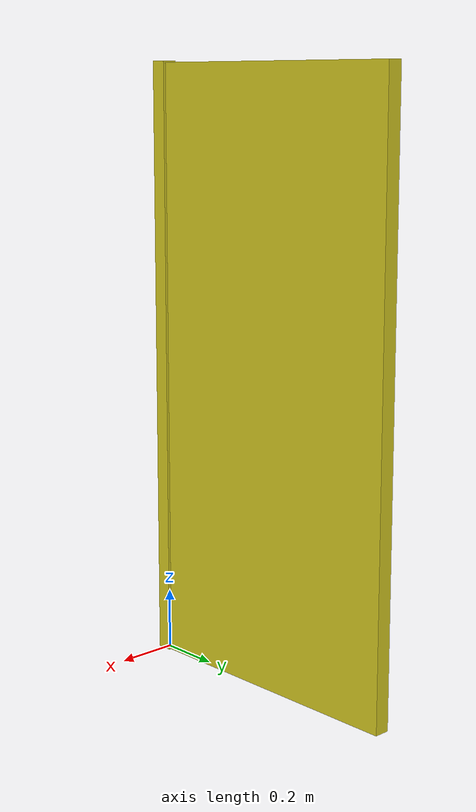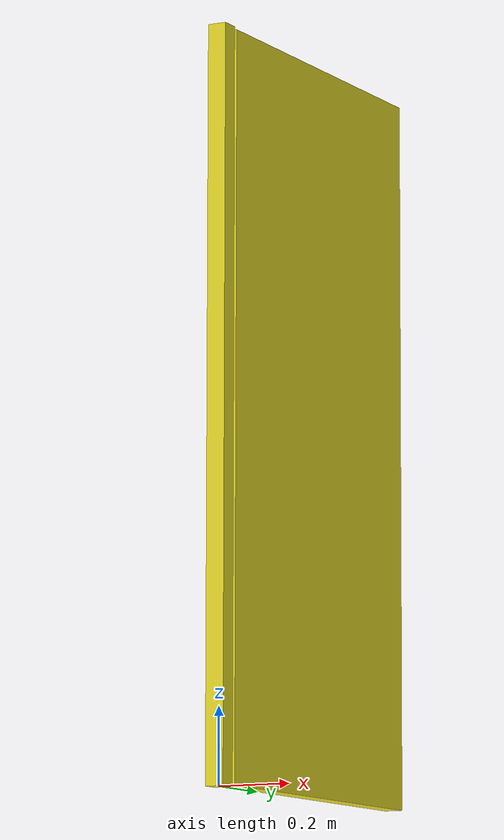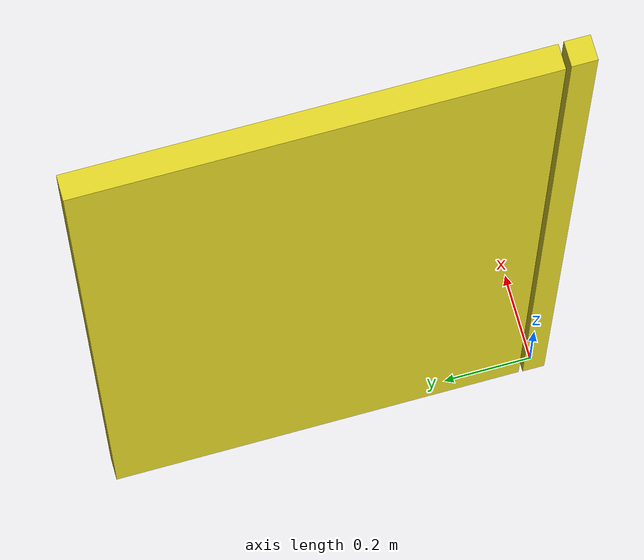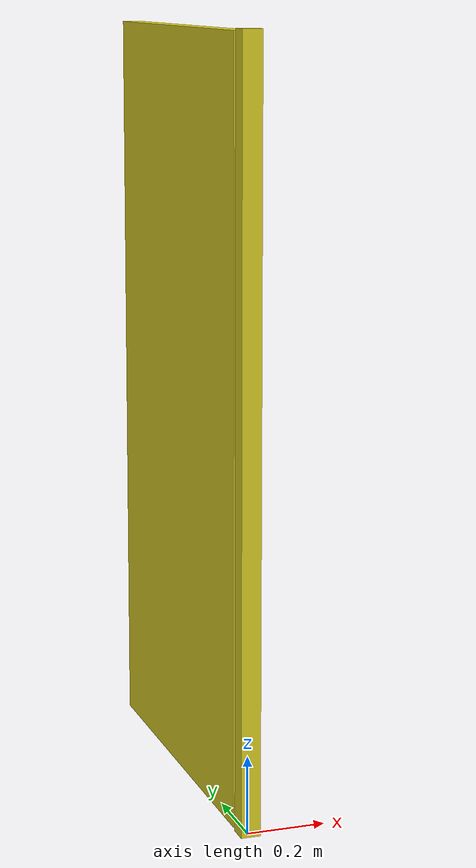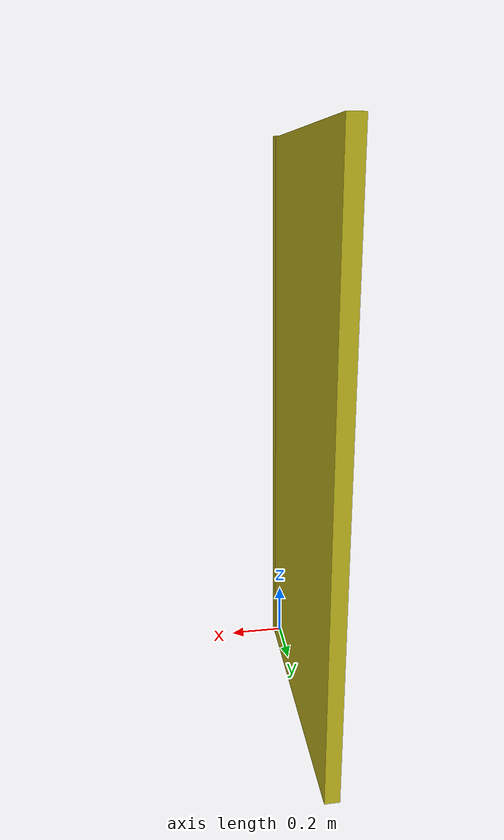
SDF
<?xml version="1.0"?>
<sdf version="1.4">
<model name="door:door">
<pose>0 0 0 0 0 0</pose>
<static>false</static>

<link name="door:door-body">
<pose>0.0 0.5 0.975 0.0 -0.0 0.0</pose>
<inertial>
<mass>1.0</mass>
<inertia>
<ixx>0.4069</ixx>
<ixy>0.0</ixy>
<ixz>0.0</ixz>
<iyy>0.3322</iyy>
<iyz>0.0</iyz>
<izz>0.0751</izz>
</inertia>
</inertial>
<collision name="collision">
<geometry>
<box>
<size>0.05 0.93 1.94</size>
</box>
</geometry>
</collision>
<visual name="visual">
<geometry>
<box>
<size>0.05 0.93 1.94</size>
</box>
</geometry><material><script><name>Gazebo/DarkYellow</name></script></material></visual>
</link>

<link name="door:door-hinge">
<pose>0.0 0.0 0.975 0.0 -0.0 0.0</pose>
<inertial>
<mass>100.0</mass>
<inertia>
<ixx>33.22</ixx>
<ixy>0.0</ixy>
<ixz>0.0</ixz>
<iyy>33.22</iyy>
<iyz>0.0</iyz>
<izz>0.0415</izz>
</inertia>
</inertial>
<collision name="collision">
<geometry>
<box>
<size>0.05 0.05 1.95</size>
</box>
</geometry>
</collision>
<visual name="visual">
<geometry>
<box>
<size>0.05 0.05 1.95</size>
</box>
</geometry><material><script><name>Gazebo/Yellow</name></script></material></visual>
</link>

<joint type="revolute" name="door:joint-door-hinge">
<pose frame="door:door-hinge">-0.025 0.025 0.97 0.0 -0.0 0.0</pose>
<child>door:door-body</child>
<parent>door:door-hinge</parent>
<axis>
<xyz>0 0 1</xyz>

<limit>
<lower>0.0</lower>
<upper>2.0</upper>
</limit>

</axis>
</joint>

</model>
</sdf>
